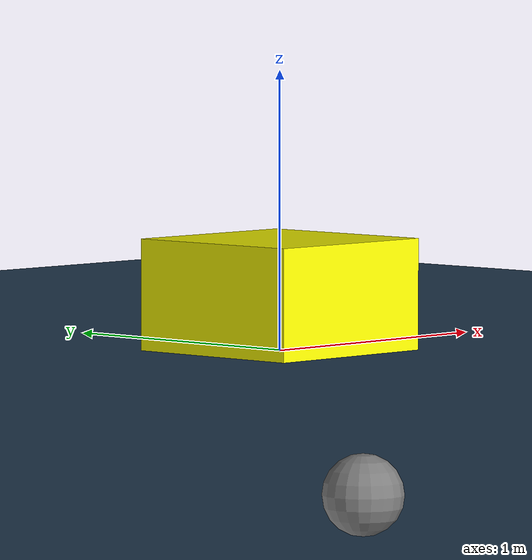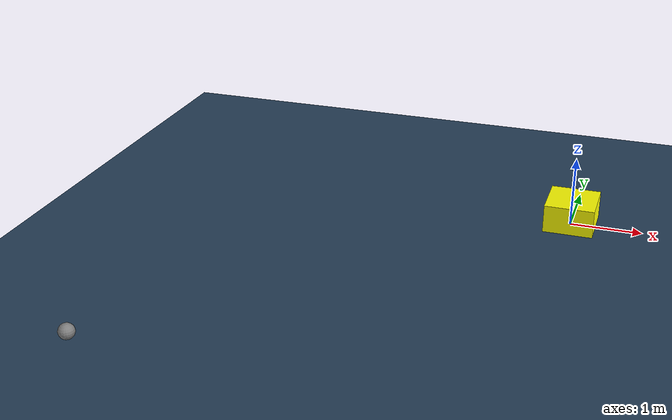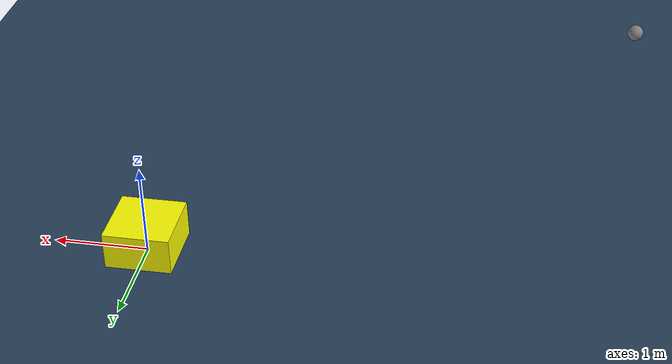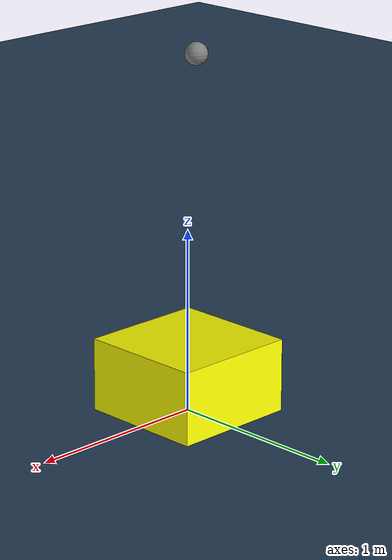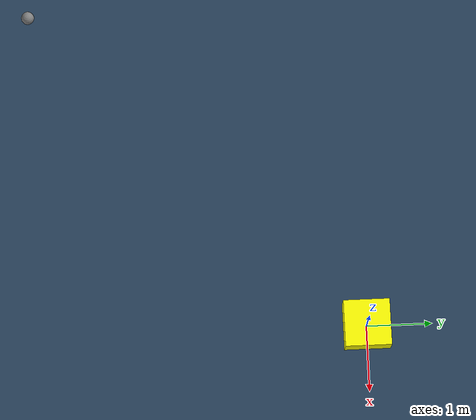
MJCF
<?xml version="1.0" ?>
<mujoco model="generated_environment">
  <option timestep="0.01" integrator="RK4" cone="elliptic"/>
<default>
    <geom density="1" />
    <!-- solimp="0.0 0.02 0.02 0.5 2" -->
  </default>
  <asset>
    <texture builtin="gradient" height="3072" rgb1="0.3 0.5 0.7" rgb2="0 0 0" type="skybox" width="512"/>
    <texture builtin="checker" height="300" mark="edge" markrgb="0.8 0.8 0.8" name="groundplane" rgb1="0.2 0.3 0.4" rgb2="0.1 0.2 0.3" type="2d" width="300"/>
    <material name="groundplane" reflectance="0.2" texrepeat="5 5" texture="groundplane" texuniform="true"/>
    <texture name="body" type="cube" builtin="flat" mark="cross" width="128" height="128" rgb1="0.8 0.6 0.4" rgb2="0.8 0.6 0.4" markrgb="1 1 1" random="0.01"/>
    <material name="body" texture="body" texuniform="true" rgba="0.8 0.6 .4 1"/>
    <material name="robot" rgba="0.0 1.0 0.0 1"/>
  </asset>

  <visual>
    <rgba contactforce="0.2 0.98 0.2 0.8"/>
    <scale forcewidth="0.005" contactwidth="1.0" contactheight="0.04"/>
    <map force="1"/>
  </visual>
  <worldbody>
    <light dir="0 0 -1" directional="true" pos="0 0 1.5"/>
    <geom condim="4" friction="0.5 0.005 0.001" material="groundplane" name="floor"  size="0 0 0.05" type="plane"/>

    <body name="robot">
      <joint name="joint_x" type="slide" pos="0 0 0" axis="1 0 0"/>
      <joint name="joint_y" type="slide" pos="0 0 0" axis="0 1 0"/>
      <geom name="robot" type="sphere" pos="-5 -5 0.3" size="0.1" mass="5." friction="1.0 0.005 0.0001" condim="4"/>
      <site name="sensor_ball"/>
    </body>

    <body name="obstacle_1_movable" >
      <freejoint />

      <geom name="obstacle_1_movable" condim="4" rgba="1 1 0 1" pos="0.0 0.0 0.2" euler="0 0 0" size="0.35 0.35 0.2" type="box" mass="0.1" friction="0.0 0.005 0.001"/>

    </body>

    <site name="origin" type="sphere" size="0.02" rgba="1 1 1 1" pos="0 0 0"/>
    <site name="x_axis" type="sphere" size="0.02" rgba="1 0 0 1" pos="0.1 0 0"/>
    <site name="y_axis" type="sphere" size="0.02" rgba="0 1 0 1" pos="0 0.1 0"/>
    <site name="z_axis" type="sphere" size="0.02" rgba="0 0 1 1" pos="0 0 0.1"/>

  </worldbody>

  <actuator>
    <motor name="actuator_x" joint="joint_x" gear="1" ctrlrange="-1 1"/>
    <motor name="actuator_y" joint="joint_y" gear="1" ctrlrange="-1 1"/>
  </actuator>
</mujoco>
